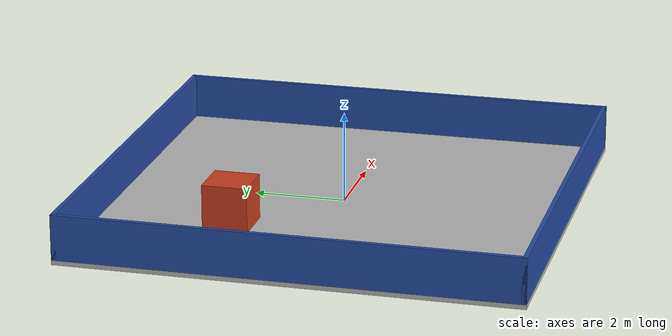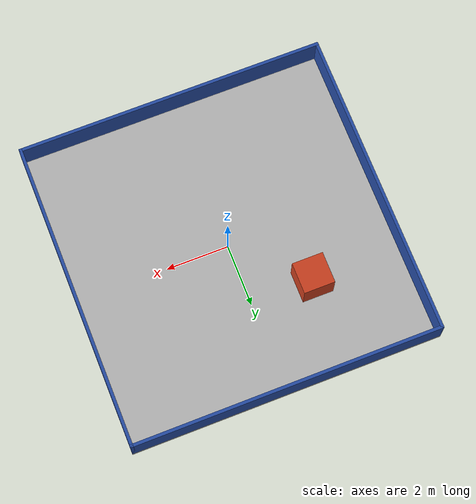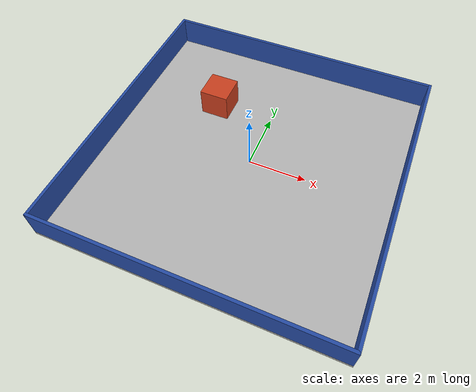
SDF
<?xml version="1.0" ?>
<sdf version="1.10">
  <world name="training">
    <gravity>0 0 -9.80665</gravity>
    <plugin filename="gz-sim-physics-system" name="gz::sim::systems::Physics"/>
    <plugin filename="gz-sim-user-commands-system" name="gz::sim::systems::UserCommands"/>
    <plugin filename="gz-sim-scene-broadcaster-system" name="gz::sim::systems::SceneBroadcaster"/>
    <plugin filename="gz-sim-sensors-system" name="gz::sim::systems::Sensors">
      <render_engine>ogre2</render_engine>
    </plugin>
    <plugin filename="gz-sim-imu-system" name="gz::sim::systems::Imu"/>

    <gui fullscreen="0">
      <plugin filename="MinimalScene" name="3D View">
        <gz-gui>
          <title>3D View</title>
          <property type="bool" key="showTitleBar">false</property>
          <property type="string" key="state">docked</property>
        </gz-gui>
        <engine>ogre2</engine>
        <scene>scene</scene>
        <ambient_light>0.4 0.4 0.4</ambient_light>
        <background_color>0.8 0.8 0.8</background_color>
        <camera_pose>-6 -6 6 0 0.55 0.78</camera_pose>
      </plugin>
      <plugin filename="EntityContextMenuPlugin" name="Entity context menu">
        <gz-gui>
          <property key="width" type="double">5</property>
          <property key="height" type="double">5</property>
          <property key="state" type="string">floating</property>
          <property key="showTitleBar" type="bool">false</property>
        </gz-gui>
      </plugin>
      <plugin filename="GzSceneManager" name="Scene Manager">
        <gz-gui>
          <property key="resizable" type="bool">false</property>
          <property key="width" type="double">5</property>
          <property key="height" type="double">5</property>
          <property key="state" type="string">floating</property>
          <property key="showTitleBar" type="bool">false</property>
        </gz-gui>
      </plugin>
      <plugin filename="InteractiveViewControl" name="Interactive view control">
        <gz-gui>
          <property key="resizable" type="bool">false</property>
          <property key="width" type="double">5</property>
          <property key="height" type="double">5</property>
          <property key="state" type="string">floating</property>
          <property key="showTitleBar" type="bool">false</property>
        </gz-gui>
      </plugin>
      <plugin filename="CameraTracking" name="Camera Tracking">
        <gz-gui>
          <property key="resizable" type="bool">false</property>
          <property key="width" type="double">5</property>
          <property key="height" type="double">5</property>
          <property key="state" type="string">floating</property>
          <property key="showTitleBar" type="bool">false</property>
        </gz-gui>
      </plugin>
      <plugin filename="VisualizeLidar" name="Visualize Lidar"/>
      <plugin filename="WorldControl" name="World control">
        <gz-gui>
          <property type="bool" key="showTitleBar">false</property>
          <property type="bool" key="resizable">false</property>
          <property type="double" key="height">72</property>
          <property type="string" key="state">floating</property>
          <anchors target="3D View">
            <line own="left" target="left"/>
            <line own="bottom" target="bottom"/>
          </anchors>
        </gz-gui>
        <play_pause>true</play_pause>
        <step>true</step>
        <start_paused>false</start_paused>
        <use_event>true</use_event>
      </plugin>
      <plugin filename="ComponentInspector" name="Component inspector">
        <gz-gui><property type="string" key="state">docked</property></gz-gui>
      </plugin>
      <plugin filename="EntityTree" name="Entity tree">
        <gz-gui><property type="string" key="state">docked</property></gz-gui>
      </plugin>
    </gui>

    <light type="directional" name="sun">
      <pose>0 0 10 0 0 0</pose>
      <direction>-0.5 0.2 -1</direction>
    </light>

    <model name="training_floor">
      <static>true</static>
      <pose>0 0 -0.05 0 0 0</pose>
      <link name="link">
        <collision name="collision"><geometry><box><size>10 10 0.1</size></box></geometry></collision>
        <visual name="visual">
          <geometry><box><size>10 10 0.1</size></box></geometry>
          <material><diffuse>0.72 0.72 0.72 1</diffuse><ambient>0.72 0.72 0.72 1</ambient></material>
        </visual>
      </link>
    </model>

    <model name="training_boundary">
      <static>true</static>
      <link name="link">
        <collision name="west"><pose>-4.95 0 0.5 0 0 0</pose><geometry><box><size>0.1 10 1</size></box></geometry></collision>
        <collision name="east"><pose>4.95 0 0.5 0 0 0</pose><geometry><box><size>0.1 10 1</size></box></geometry></collision>
        <collision name="south"><pose>0 -4.95 0.5 0 0 0</pose><geometry><box><size>10 0.1 1</size></box></geometry></collision>
        <collision name="north"><pose>0 4.95 0.5 0 0 0</pose><geometry><box><size>10 0.1 1</size></box></geometry></collision>
        <visual name="west_visual"><pose>-4.95 0 0.5 0 0 0</pose><geometry><box><size>0.1 10 1</size></box></geometry><material><diffuse>0.15 0.3 0.65 1</diffuse></material></visual>
        <visual name="east_visual"><pose>4.95 0 0.5 0 0 0</pose><geometry><box><size>0.1 10 1</size></box></geometry><material><diffuse>0.15 0.3 0.65 1</diffuse></material></visual>
        <visual name="south_visual"><pose>0 -4.95 0.5 0 0 0</pose><geometry><box><size>10 0.1 1</size></box></geometry><material><diffuse>0.15 0.3 0.65 1</diffuse></material></visual>
        <visual name="north_visual"><pose>0 4.95 0.5 0 0 0</pose><geometry><box><size>10 0.1 1</size></box></geometry><material><diffuse>0.15 0.3 0.65 1</diffuse></material></visual>
      </link>
    </model>

    <model name="training_obstacle">
      <static>true</static>
      <pose>-2 2 0.5 0 0 0</pose>
      <link name="link">
        <collision name="collision"><geometry><box><size>1 1 1</size></box></geometry></collision>
        <visual name="visual"><geometry><box><size>1 1 1</size></box></geometry><material><diffuse>0.8 0.25 0.12 1</diffuse></material></visual>
      </link>
    </model>
  </world>
</sdf>
